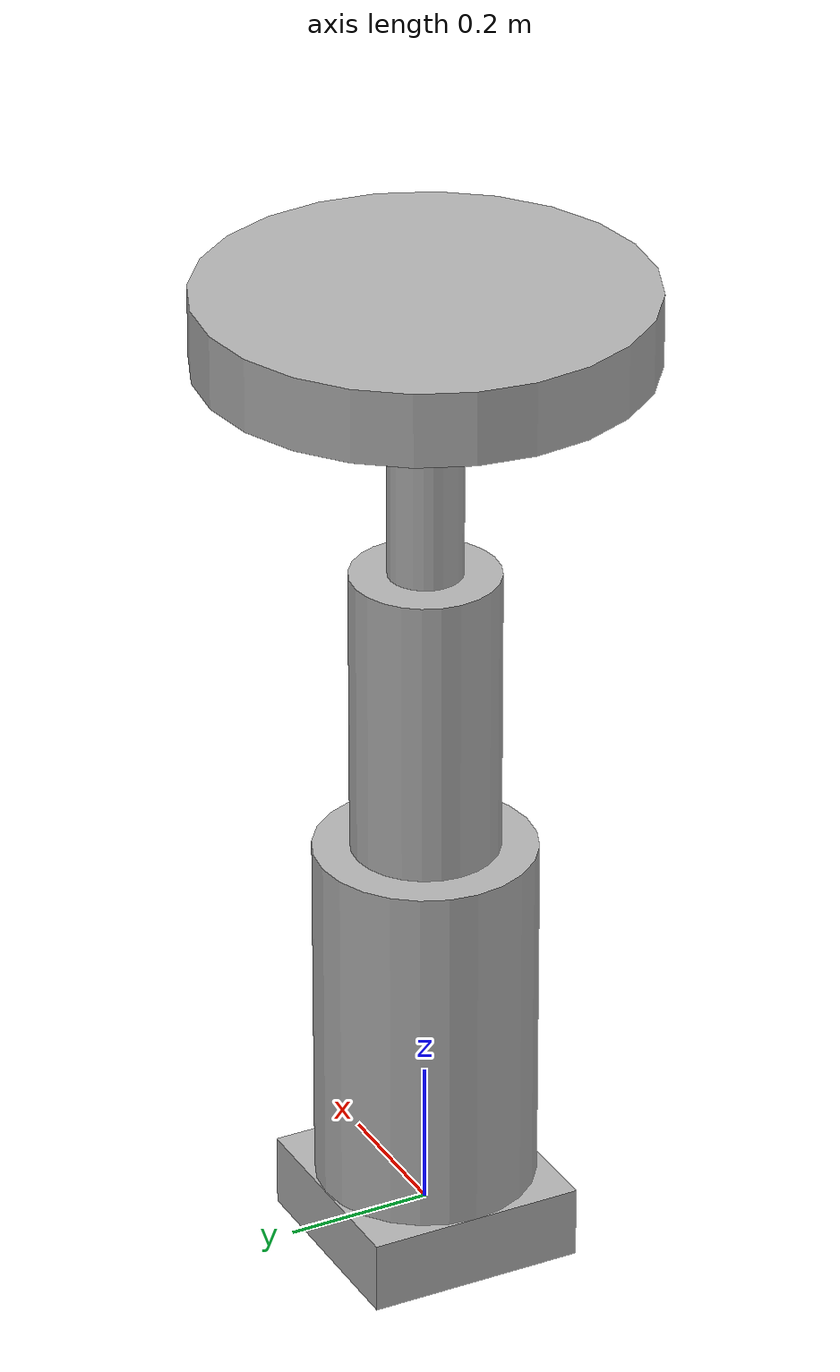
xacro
<?xml version="1.0"?>
<robot xmlns:xacro="http://ros.org/wiki/xacro" name="custom_arm">

  <!-- Material -->
  <material name="gray">
    <color rgba="0.7 0.7 0.7 1"/>
  </material>

  <!-- Base link -->
  <link name="base_link">
    <visual>
      <geometry><box size="0.3 0.3 0.1"/></geometry>
      <material name="gray"/>
    </visual>
    <collision>
      <geometry><box size="0.3 0.3 0.1"/></geometry>
    </collision>
    <inertial>
      <mass value="1.0"/>
      <inertia ixx="0.01" ixy="0" ixz="0" iyy="0.01" iyz="0" izz="0.01"/>
    </inertial>

    <gazebo reference="base_link">
	  <gravity>0</gravity>
 	  <static>true</static>
    </gazebo>

  </link>

  <!-- Arm segments -->
  <xacro:macro name="arm_link" params="id length radius">
    <link name="link_${id}">
      <visual>
        <geometry><cylinder length="${length}" radius="${radius}"/></geometry>
        <material name="gray"/>
        <origin xyz="0 0 ${length/2}" rpy="0 0 0"/>
      </visual>
      <collision>
        <geometry><cylinder length="${length}" radius="${radius}"/></geometry>
        <origin xyz="0 0 ${length/2}" rpy="0 0 0"/>
      </collision>
      <inertial>
        <mass value="0.5"/>
        <inertia ixx="0.005" ixy="0" ixz="0" iyy="0.005" iyz="0" izz="0.005"/>
      </inertial>
    </link>
  </xacro:macro>

  <!-- Add arm links -->
  <xacro:arm_link id="1" length="0.5" radius="0.15"/>
  <xacro:arm_link id="2" length="0.4" radius="0.10"/>
  <xacro:arm_link id="3" length="0.3" radius="0.05"/>
  <xacro:arm_link id="ee" length="0.1" radius="0.30"/>

<!-- Revolute Joint 1 -->
<joint name="joint_1" type="revolute">
  <parent link="base_link"/>
  <child link="link_1"/>
  <origin xyz="0 0 0.05" rpy="0 0 0"/>
  <axis xyz="0 0 1"/>
  <limit lower="-3.14" upper="3.14" effort="1.0" velocity="1.0"/>
</joint>

<!-- Revolute Joint 2 -->
<joint name="joint_2" type="revolute">
  <parent link="link_1"/>
  <child link="link_2"/>
  <origin xyz="0 0 0.5" rpy="0 0 0"/>
  <axis xyz="0 1 0"/>
  <limit lower="-3.14" upper="3.14" effort="1.0" velocity="1.0"/>
</joint>

<!-- Revolute Joint 3 -->
<joint name="joint_3" type="revolute">
  <parent link="link_2"/>
  <child link="link_3"/>
  <origin xyz="0 0 0.4" rpy="0 0 0"/>
  <axis xyz="0 1 0"/>
  <limit lower="-3.14" upper="3.14" effort="1.0" velocity="1.0"/>
</joint>

<!-- End-effector (fixed) -->
<joint name="ee_joint" type="fixed">
  <parent link="link_3"/>
  <child link="link_ee"/>
  <origin xyz="0 0 0.3" rpy="0 0 0"/>
</joint>

</robot>
